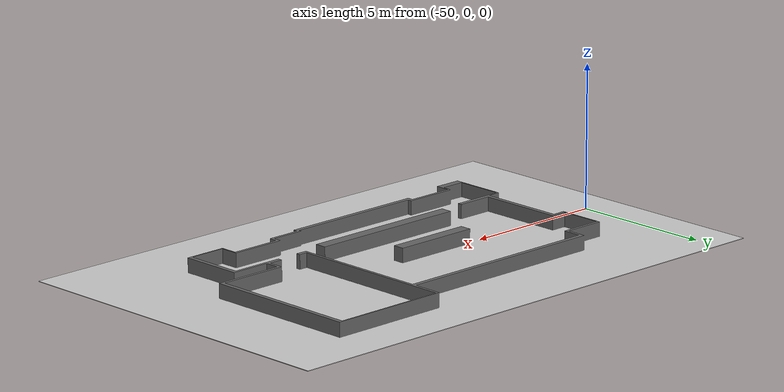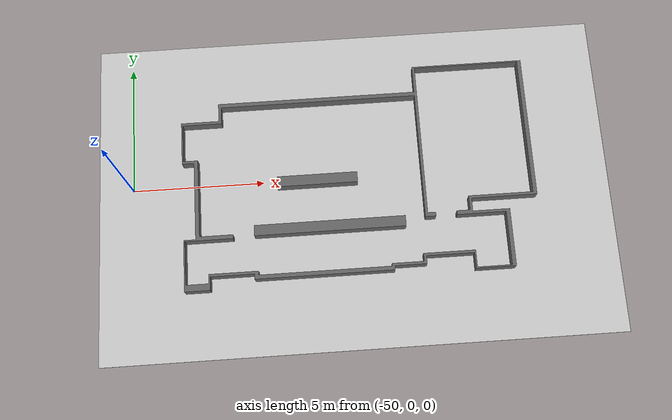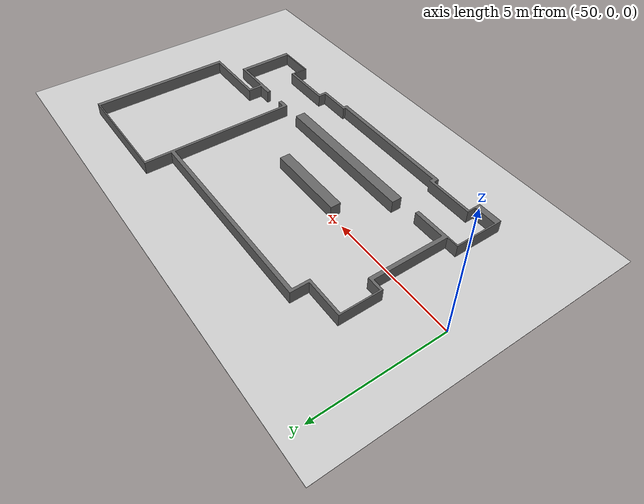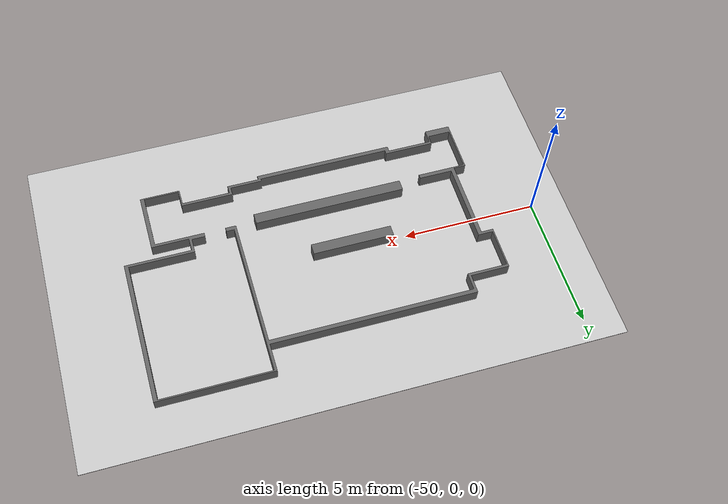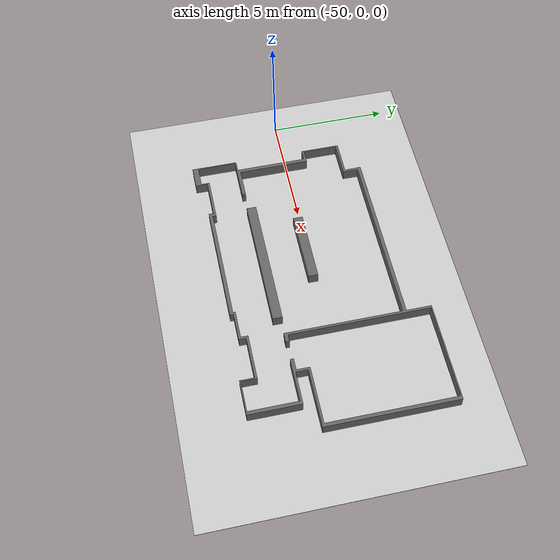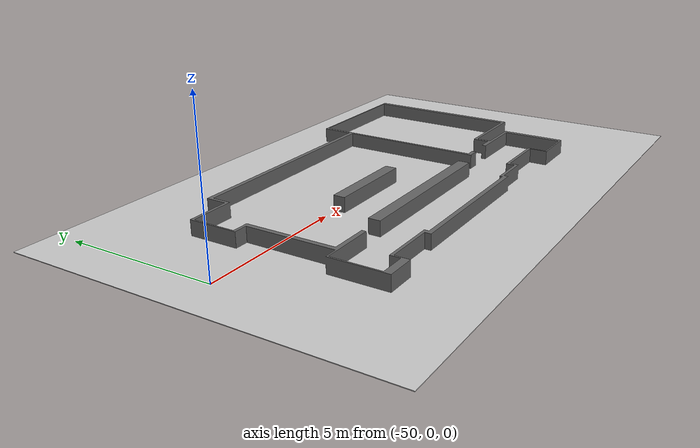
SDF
<?xml version="1.0" ?>
<sdf version="1.7">
  <world name="mapv5">
    <plugin filename="gz-sim-physics-system" name="gz::sim::systems::Physics"/>
    <plugin filename="gz-sim-sensors-system" name="gz::sim::systems::Sensors">
      <render_engine>ogre2</render_engine>
    </plugin>
    <plugin filename="gz-sim-user-commands-system" name="gz::sim::systems::UserCommands"/>
    <plugin filename="gz-sim-scene-broadcaster-system" name="gz::sim::systems::SceneBroadcaster"/>
    <plugin filename="gz-sim-imu-system" name="gz::sim::systems::Imu"/>

    <scene>
      <ambient>0.5 0.5 0.5 1</ambient>
      <background>0.8 0.8 0.8</background>
      <grid>false</grid>
    </scene>

    <gui fullscreen="0">
      <plugin filename="MinimalScene" name="3D View">
        <gz-gui>
          <title>3D View</title>
          <property type="bool" key="showTitleBar">false</property>
          <property type="string" key="state">docked</property>
        </gz-gui>
        <ambient_light>0.5 0.5 0.5</ambient_light>
        <background_color>0.8 0.8 0.8</background_color>
        <camera_pose>-41.545 -0.374 18 0 1.5708 0</camera_pose>
        <camera_clip>
          <near>0.25</near>
          <far>250</far>
        </camera_clip>
        <engine>ogre2</engine>
        <scene>scene</scene>
        <sky>true</sky>
      </plugin>

      <plugin filename="GzSceneManager" name="Scene Manager">
        <gz-gui>
          <property key="resizable" type="bool">false</property>
          <property key="width" type="double">5</property>
          <property key="height" type="double">5</property>
          <property key="state" type="string">floating</property>
          <property key="showTitleBar" type="bool">false</property>
        </gz-gui>
      </plugin>

      <plugin filename="InteractiveViewControl" name="Interactive view control">
        <gz-gui>
          <property key="resizable" type="bool">false</property>
          <property key="width" type="double">5</property>
          <property key="height" type="double">5</property>
          <property key="state" type="string">floating</property>
          <property key="showTitleBar" type="bool">false</property>
        </gz-gui>
      </plugin>

      <plugin filename="CameraTracking" name="Camera Tracking">
        <gz-gui>
          <property key="resizable" type="bool">false</property>
          <property key="width" type="double">5</property>
          <property key="height" type="double">5</property>
          <property key="state" type="string">floating</property>
          <property key="showTitleBar" type="bool">false</property>
        </gz-gui>
      </plugin>

      <plugin filename="MarkerManager" name="Marker manager">
        <gz-gui>
          <property key="resizable" type="bool">false</property>
          <property key="width" type="double">5</property>
          <property key="height" type="double">5</property>
          <property key="state" type="string">floating</property>
          <property key="showTitleBar" type="bool">false</property>
        </gz-gui>
      </plugin>

      <plugin filename="SelectEntities" name="Select Entities">
        <gz-gui>
          <property key="resizable" type="bool">false</property>
          <property key="width" type="double">5</property>
          <property key="height" type="double">5</property>
          <property key="state" type="string">floating</property>
          <property key="showTitleBar" type="bool">false</property>
        </gz-gui>
      </plugin>

      <plugin filename="Spawn" name="Spawn Entities">
        <gz-gui>
          <property key="resizable" type="bool">false</property>
          <property key="width" type="double">5</property>
          <property key="height" type="double">5</property>
          <property key="state" type="string">floating</property>
          <property key="showTitleBar" type="bool">false</property>
        </gz-gui>
      </plugin>

      <plugin filename="VisualizationCapabilities" name="Visualization Capabilities">
        <gz-gui>
          <property key="resizable" type="bool">false</property>
          <property key="width" type="double">5</property>
          <property key="height" type="double">5</property>
          <property key="state" type="string">floating</property>
          <property key="showTitleBar" type="bool">false</property>
        </gz-gui>
      </plugin>

      <plugin filename="WorldControl" name="World control">
        <gz-gui>
          <title>World control</title>
          <property type="bool" key="showTitleBar">false</property>
          <property type="bool" key="resizable">false</property>
          <property type="double" key="height">72</property>
          <property type="double" key="width">121</property>
          <property type="double" key="z">1</property>
          <property type="string" key="state">floating</property>
          <anchors target="3D View">
            <line own="left" target="left"/>
            <line own="bottom" target="bottom"/>
          </anchors>
        </gz-gui>
        <play_pause>true</play_pause>
        <step>true</step>
        <start_paused>false</start_paused>
        <service>/world/mapv5/control</service>
        <stats_topic>/world/mapv5/stats</stats_topic>
      </plugin>

      <plugin filename="WorldStats" name="World stats">
        <gz-gui>
          <title>World stats</title>
          <property type="bool" key="showTitleBar">false</property>
          <property type="bool" key="resizable">false</property>
          <property type="double" key="height">110</property>
          <property type="double" key="width">290</property>
          <property type="double" key="z">1</property>
          <property type="string" key="state">floating</property>
          <anchors target="3D View">
            <line own="right" target="right"/>
            <line own="bottom" target="bottom"/>
          </anchors>
        </gz-gui>
        <sim_time>true</sim_time>
        <real_time>true</real_time>
        <real_time_factor>true</real_time_factor>
        <iterations>true</iterations>
        <topic>/world/mapv5/stats</topic>
      </plugin>

      <plugin filename="EntityTree" name="Entity tree"/>
    </gui>

    <light type="directional" name="sun">
      <cast_shadows>true</cast_shadows>
      <pose>-41.545 -0.374 10 0 0 0</pose>
      <diffuse>1 1 1 1</diffuse>
      <specular>0.2 0.2 0.2 1</specular>
      <attenuation>
        <range>1000</range>
        <constant>0.09</constant>
        <linear>0.001</linear>
        <quadratic>0.001</quadratic>
      </attenuation>
      <direction>-0.3 -0.3 -0.9</direction>
    </light>

    <light type="point" name="lamp_main_1">
      <pose>-46.0 -2.0 2.5 0 0 0</pose>
      <diffuse>0.95 0.92 0.85 1</diffuse>
      <specular>0.1 0.1 0.1 1</specular>
      <attenuation>
        <range>12</range>
        <constant>0.5</constant>
        <linear>0.05</linear>
        <quadratic>0.005</quadratic>
      </attenuation>
      <cast_shadows>false</cast_shadows>
    </light>

    <light type="point" name="lamp_main_2">
      <pose>-37.0 1.0 2.5 0 0 0</pose>
      <diffuse>0.95 0.92 0.85 1</diffuse>
      <specular>0.1 0.1 0.1 1</specular>
      <attenuation>
        <range>12</range>
        <constant>0.5</constant>
        <linear>0.05</linear>
        <quadratic>0.005</quadratic>
      </attenuation>
      <cast_shadows>false</cast_shadows>
    </light>

    <model name="floor">
      <static>true</static>
      <link name="floor_link">
        <pose>-41.545 -0.374 -0.01 0 0 0</pose>
        <visual name="floor_visual">
          <geometry>
            <box>
              <size>19.55 12.50 0.02</size>
            </box>
          </geometry>
          <material>
            <ambient>0.6 0.6 0.6 1</ambient>
            <diffuse>0.8 0.8 0.8 1</diffuse>
            <specular>0.1 0.1 0.1 1</specular>
          </material>
        </visual>
        <collision name="floor_collision">
          <geometry>
            <box>
              <size>19.55 12.50 0.02</size>
            </box>
          </geometry>
        </collision>
      </link>
    </model>

    <include>
      <uri>model://mapv5</uri>
      <pose>-51.320 -6.624 0 0 0 0</pose>
    </include>

  </world>
</sdf>

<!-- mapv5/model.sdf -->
<sdf version="1.7">
  <model name="mapv5">
    <static>true</static>
    <link name="walls_high">
      <visual name="walls_high_visual">
        <geometry>
          <mesh>
            <uri>model://mapv5/meshes/walls_high.stl</uri>
            <scale>1 1 0.25</scale>
          </mesh>
        </geometry>
        <material>
          <ambient>0.30 0.30 0.30 1</ambient>
          <diffuse>0.40 0.40 0.40 1</diffuse>
          <specular>0.1 0.1 0.1 1</specular>
        </material>
      </visual>
      <collision name="walls_high_collision">
        <geometry>
          <mesh>
            <uri>model://mapv5/meshes/walls_high.stl</uri>
            <scale>1 1 0.25</scale>
          </mesh>
        </geometry>
        <surface>
          <contact>
            <collide_bitmask>0x01</collide_bitmask>
          </contact>
        </surface>
      </collision>
    </link>
  </model>
</sdf>
